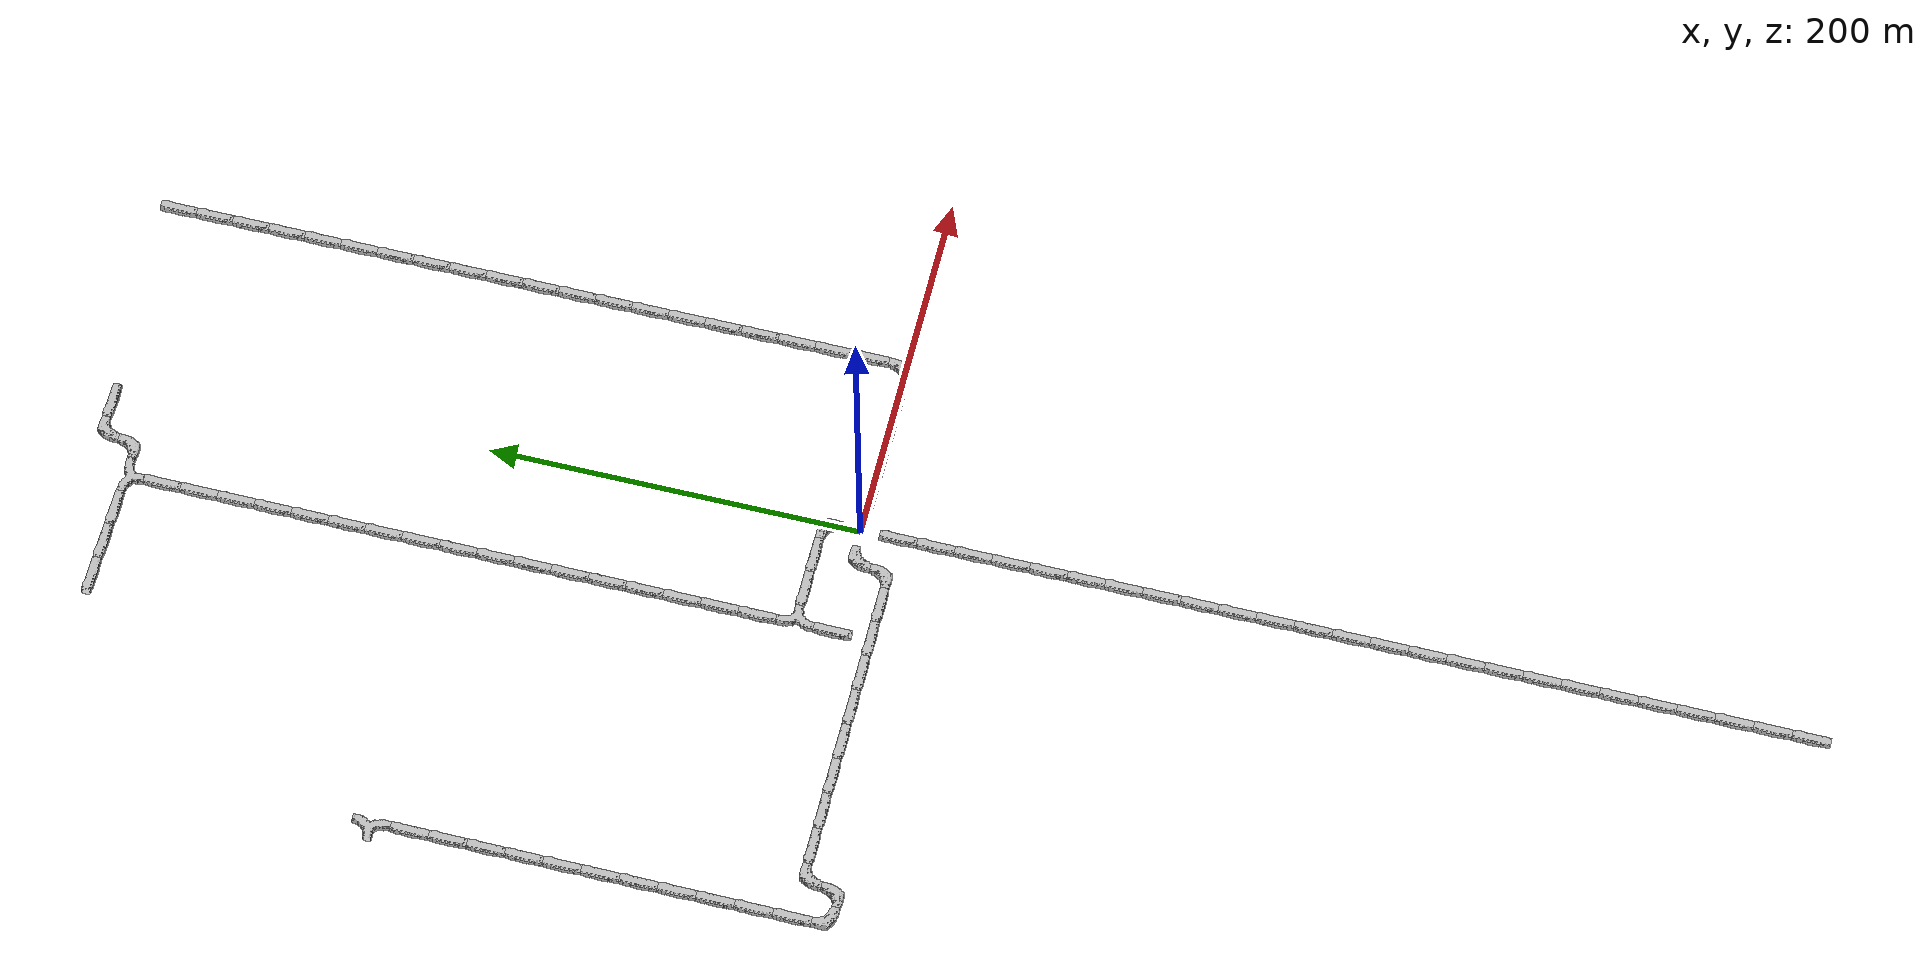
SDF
<sdf version="1.6">
 <world name="cave_2000_8">
  <include>
   <static>true</static>
   <name>cave_1_0</name>
   <pose>20 0 0 0 0 1.5707963267948966</pose>
   <uri>model://cave_straight_20m</uri>
  </include>
  <include>
   <static>true</static>
   <name>cave_2_0</name>
   <pose>40 0 0 0 0 1.5707963267948966</pose>
   <uri>model://cave_straight_20m</uri>
  </include>
  <include>
   <static>true</static>
   <name>cave_3_0</name>
   <pose>60 0 0 0 0 1.5707963267948966</pose>
   <uri>model://cave_straight_20m</uri>
  </include>
  <include>
   <static>true</static>
   <name>cave_4_0</name>
   <pose>80 0 0 0 0 1.5707963267948966</pose>
   <uri>model://cave_straight_20m</uri>
  </include>
  <include>
   <static>true</static>
   <name>cave_5_0</name>
   <pose>100 0 0 0 0 1.5707963267948966</pose>
   <uri>model://cave_L_20m</uri>
  </include>
  <include>
   <static>true</static>
   <name>cave_5_1</name>
   <pose>100 20 0 0 0 0.0</pose>
   <uri>model://cave_straight_20m</uri>
  </include>
  <include>
   <static>true</static>
   <name>cave_5_2</name>
   <pose>100 40 0 0 0 0.0</pose>
   <uri>model://cave_straight_20m</uri>
  </include>
  <include>
   <static>true</static>
   <name>cave_5_3</name>
   <pose>100 60 0 0 0 0.0</pose>
   <uri>model://cave_straight_20m</uri>
  </include>
  <include>
   <static>true</static>
   <name>cave_5_4</name>
   <pose>100 80 0 0 0 0.0</pose>
   <uri>model://cave_straight_20m</uri>
  </include>
  <include>
   <static>true</static>
   <name>cave_5_5</name>
   <pose>100 100 0 0 0 0.0</pose>
   <uri>model://cave_straight_20m</uri>
  </include>
  <include>
   <static>true</static>
   <name>cave_5_6</name>
   <pose>100 120 0 0 0 0.0</pose>
   <uri>model://cave_straight_20m</uri>
  </include>
  <include>
   <static>true</static>
   <name>cave_5_7</name>
   <pose>100 140 0 0 0 0.0</pose>
   <uri>model://cave_straight_20m</uri>
  </include>
  <include>
   <static>true</static>
   <name>cave_5_8</name>
   <pose>100 160 0 0 0 0.0</pose>
   <uri>model://cave_straight_20m</uri>
  </include>
  <include>
   <static>true</static>
   <name>cave_5_9</name>
   <pose>100 180 0 0 0 0.0</pose>
   <uri>model://cave_straight_20m</uri>
  </include>
  <include>
   <static>true</static>
   <name>cave_5_10</name>
   <pose>100 200 0 0 0 0.0</pose>
   <uri>model://cave_straight_20m</uri>
  </include>
  <include>
   <static>true</static>
   <name>cave_5_11</name>
   <pose>100 220 0 0 0 0.0</pose>
   <uri>model://cave_straight_20m</uri>
  </include>
  <include>
   <static>true</static>
   <name>cave_5_12</name>
   <pose>100 240 0 0 0 0.0</pose>
   <uri>model://cave_straight_20m</uri>
  </include>
  <include>
   <static>true</static>
   <name>cave_5_13</name>
   <pose>100 260 0 0 0 0.0</pose>
   <uri>model://cave_straight_20m</uri>
  </include>
  <include>
   <static>true</static>
   <name>cave_5_14</name>
   <pose>100 280 0 0 0 0.0</pose>
   <uri>model://cave_straight_20m</uri>
  </include>
  <include>
   <static>true</static>
   <name>cave_5_15</name>
   <pose>100 300 0 0 0 0.0</pose>
   <uri>model://cave_straight_20m</uri>
  </include>
  <include>
   <static>true</static>
   <name>cave_5_16</name>
   <pose>100 320 0 0 0 0.0</pose>
   <uri>model://cave_straight_20m</uri>
  </include>
  <include>
   <static>true</static>
   <name>cave_5_17</name>
   <pose>100 340 0 0 0 0.0</pose>
   <uri>model://cave_straight_20m</uri>
  </include>
  <include>
   <static>true</static>
   <name>cave_5_18</name>
   <pose>100 360 0 0 0 0.0</pose>
   <uri>model://cave_straight_20m</uri>
  </include>
  <include>
   <static>true</static>
   <name>cave_5_19</name>
   <pose>100 380 0 0 0 0.0</pose>
   <uri>model://cave_straight_20m</uri>
  </include>
  <include>
   <static>true</static>
   <name>cave_5_20</name>
   <pose>100 400 0 0 0 0.0</pose>
   <uri>model://cave_straight_20m</uri>
  </include>
  <include>
   <static>true</static>
   <name>cave_0_-1</name>
   <pose>0 -20 0 0 0 0.0</pose>
   <uri>model://cave_straight_20m</uri>
  </include>
  <include>
   <static>true</static>
   <name>cave_0_-2</name>
   <pose>0 -40 0 0 0 0.0</pose>
   <uri>model://cave_straight_20m</uri>
  </include>
  <include>
   <static>true</static>
   <name>cave_0_-3</name>
   <pose>0 -60 0 0 0 0.0</pose>
   <uri>model://cave_straight_20m</uri>
  </include>
  <include>
   <static>true</static>
   <name>cave_0_-4</name>
   <pose>0 -80 0 0 0 0.0</pose>
   <uri>model://cave_straight_20m</uri>
  </include>
  <include>
   <static>true</static>
   <name>cave_0_-5</name>
   <pose>0 -100 0 0 0 0.0</pose>
   <uri>model://cave_straight_20m</uri>
  </include>
  <include>
   <static>true</static>
   <name>cave_0_-6</name>
   <pose>0 -120 0 0 0 0.0</pose>
   <uri>model://cave_straight_20m</uri>
  </include>
  <include>
   <static>true</static>
   <name>cave_0_-7</name>
   <pose>0 -140 0 0 0 0.0</pose>
   <uri>model://cave_straight_20m</uri>
  </include>
  <include>
   <static>true</static>
   <name>cave_0_-8</name>
   <pose>0 -160 0 0 0 0.0</pose>
   <uri>model://cave_straight_20m</uri>
  </include>
  <include>
   <static>true</static>
   <name>cave_0_-9</name>
   <pose>0 -180 0 0 0 0.0</pose>
   <uri>model://cave_straight_20m</uri>
  </include>
  <include>
   <static>true</static>
   <name>cave_0_-10</name>
   <pose>0 -200 0 0 0 0.0</pose>
   <uri>model://cave_straight_20m</uri>
  </include>
  <include>
   <static>true</static>
   <name>cave_0_-11</name>
   <pose>0 -220 0 0 0 0.0</pose>
   <uri>model://cave_straight_20m</uri>
  </include>
  <include>
   <static>true</static>
   <name>cave_0_-12</name>
   <pose>0 -240 0 0 0 0.0</pose>
   <uri>model://cave_straight_20m</uri>
  </include>
  <include>
   <static>true</static>
   <name>cave_0_-13</name>
   <pose>0 -260 0 0 0 0.0</pose>
   <uri>model://cave_straight_20m</uri>
  </include>
  <include>
   <static>true</static>
   <name>cave_0_-14</name>
   <pose>0 -280 0 0 0 0.0</pose>
   <uri>model://cave_straight_20m</uri>
  </include>
  <include>
   <static>true</static>
   <name>cave_0_-15</name>
   <pose>0 -300 0 0 0 0.0</pose>
   <uri>model://cave_straight_20m</uri>
  </include>
  <include>
   <static>true</static>
   <name>cave_0_-16</name>
   <pose>0 -320 0 0 0 0.0</pose>
   <uri>model://cave_straight_20m</uri>
  </include>
  <include>
   <static>true</static>
   <name>cave_0_-17</name>
   <pose>0 -340 0 0 0 0.0</pose>
   <uri>model://cave_straight_20m</uri>
  </include>
  <include>
   <static>true</static>
   <name>cave_0_-18</name>
   <pose>0 -360 0 0 0 0.0</pose>
   <uri>model://cave_straight_20m</uri>
  </include>
  <include>
   <static>true</static>
   <name>cave_0_-19</name>
   <pose>0 -380 0 0 0 0.0</pose>
   <uri>model://cave_straight_20m</uri>
  </include>
  <include>
   <static>true</static>
   <name>cave_0_-20</name>
   <pose>0 -400 0 0 0 0.0</pose>
   <uri>model://cave_straight_20m</uri>
  </include>
  <include>
   <static>true</static>
   <name>cave_0_-21</name>
   <pose>0 -420 0 0 0 0.0</pose>
   <uri>model://cave_straight_20m</uri>
  </include>
  <include>
   <static>true</static>
   <name>cave_0_-22</name>
   <pose>0 -440 0 0 0 0.0</pose>
   <uri>model://cave_straight_20m</uri>
  </include>
  <include>
   <static>true</static>
   <name>cave_0_-23</name>
   <pose>0 -460 0 0 0 0.0</pose>
   <uri>model://cave_straight_20m</uri>
  </include>
  <include>
   <static>true</static>
   <name>cave_0_-24</name>
   <pose>0 -480 0 0 0 0.0</pose>
   <uri>model://cave_straight_20m</uri>
  </include>
  <include>
   <static>true</static>
   <name>cave_0_-25</name>
   <pose>0 -500 0 0 0 0.0</pose>
   <uri>model://cave_straight_20m</uri>
  </include>
  <include>
   <static>true</static>
   <name>cave_-1_0</name>
   <pose>-20 0 0 0 0 -1.5707963267948966</pose>
   <uri>model://cave_L_20m</uri>
  </include>
  <include>
   <static>true</static>
   <name>cave_-1_-1</name>
   <pose>-20 -20 0 0 0 1.5707963267948966</pose>
   <uri>model://cave_L_20m</uri>
  </include>
  <include>
   <static>true</static>
   <name>cave_-2_-1</name>
   <pose>-40 -20 0 0 0 1.5707963267948966</pose>
   <uri>model://cave_straight_20m</uri>
  </include>
  <include>
   <static>true</static>
   <name>cave_-3_-1</name>
   <pose>-60 -20 0 0 0 1.5707963267948966</pose>
   <uri>model://cave_straight_20m</uri>
  </include>
  <include>
   <static>true</static>
   <name>cave_-4_-1</name>
   <pose>-80 -20 0 0 0 1.5707963267948966</pose>
   <uri>model://cave_straight_20m</uri>
  </include>
  <include>
   <static>true</static>
   <name>cave_-5_-1</name>
   <pose>-100 -20 0 0 0 1.5707963267948966</pose>
   <uri>model://cave_straight_20m</uri>
  </include>
  <include>
   <static>true</static>
   <name>cave_-6_-1</name>
   <pose>-120 -20 0 0 0 1.5707963267948966</pose>
   <uri>model://cave_straight_20m</uri>
  </include>
  <include>
   <static>true</static>
   <name>cave_-7_-1</name>
   <pose>-140 -20 0 0 0 1.5707963267948966</pose>
   <uri>model://cave_straight_20m</uri>
  </include>
  <include>
   <static>true</static>
   <name>cave_-8_-1</name>
   <pose>-160 -20 0 0 0 1.5707963267948966</pose>
   <uri>model://cave_straight_20m</uri>
  </include>
  <include>
   <static>true</static>
   <name>cave_-9_-1</name>
   <pose>-180 -20 0 0 0 1.5707963267948966</pose>
   <uri>model://cave_straight_20m</uri>
  </include>
  <include>
   <static>true</static>
   <name>cave_-10_-1</name>
   <pose>-200 -20 0 0 0 -1.5707963267948966</pose>
   <uri>model://cave_L_20m</uri>
  </include>
  <include>
   <static>true</static>
   <name>cave_-10_-2</name>
   <pose>-200 -40 0 0 0 1.5707963267948966</pose>
   <uri>model://cave_L_20m</uri>
  </include>
  <include>
   <static>true</static>
   <name>cave_-11_-2</name>
   <pose>-220 -40 0 0 0 0.0</pose>
   <uri>model://cave_L_20m</uri>
  </include>
  <include>
   <static>true</static>
   <name>cave_-11_-1</name>
   <pose>-220 -20 0 0 0 0.0</pose>
   <uri>model://cave_straight_20m</uri>
  </include>
  <include>
   <static>true</static>
   <name>cave_-11_0</name>
   <pose>-220 0 0 0 0 0.0</pose>
   <uri>model://cave_straight_20m</uri>
  </include>
  <include>
   <static>true</static>
   <name>cave_-11_1</name>
   <pose>-220 20 0 0 0 0.0</pose>
   <uri>model://cave_straight_20m</uri>
  </include>
  <include>
   <static>true</static>
   <name>cave_-11_2</name>
   <pose>-220 40 0 0 0 0.0</pose>
   <uri>model://cave_straight_20m</uri>
  </include>
  <include>
   <static>true</static>
   <name>cave_-11_3</name>
   <pose>-220 60 0 0 0 0.0</pose>
   <uri>model://cave_straight_20m</uri>
  </include>
  <include>
   <static>true</static>
   <name>cave_-11_4</name>
   <pose>-220 80 0 0 0 0.0</pose>
   <uri>model://cave_straight_20m</uri>
  </include>
  <include>
   <static>true</static>
   <name>cave_-11_5</name>
   <pose>-220 100 0 0 0 0.0</pose>
   <uri>model://cave_straight_20m</uri>
  </include>
  <include>
   <static>true</static>
   <name>cave_-11_6</name>
   <pose>-220 120 0 0 0 0.0</pose>
   <uri>model://cave_straight_20m</uri>
  </include>
  <include>
   <static>true</static>
   <name>cave_-11_7</name>
   <pose>-220 140 0 0 0 0.0</pose>
   <uri>model://cave_straight_20m</uri>
  </include>
  <include>
   <static>true</static>
   <name>cave_-11_8</name>
   <pose>-220 160 0 0 0 0.0</pose>
   <uri>model://cave_straight_20m</uri>
  </include>
  <include>
   <static>true</static>
   <name>cave_-11_9</name>
   <pose>-220 180 0 0 0 0.0</pose>
   <uri>model://cave_straight_20m</uri>
  </include>
  <include>
   <static>true</static>
   <name>cave_-11_10</name>
   <pose>-220 200 0 0 0 1.5707963267948966</pose>
   <uri>model://cave_3way_20m</uri>
  </include>
  <include>
   <static>true</static>
   <name>cave_0_1</name>
   <pose>0 20 0 0 0 3.141592653589793</pose>
   <uri>model://cave_L_20m</uri>
  </include>
  <include>
   <static>true</static>
   <name>cave_-1_1</name>
   <pose>-20 20 0 0 0 1.5707963267948966</pose>
   <uri>model://cave_straight_20m</uri>
  </include>
  <include>
   <static>true</static>
   <name>cave_-2_1</name>
   <pose>-40 20 0 0 0 1.5707963267948966</pose>
   <uri>model://cave_straight_20m</uri>
  </include>
  <include>
   <static>true</static>
   <name>cave_-3_1</name>
   <pose>-60 20 0 0 0 -1.5707963267948966</pose>
   <uri>model://cave_3way_20m</uri>
  </include>
  <include>
   <static>true</static>
   <name>cave_-3_0</name>
   <pose>-60 0 0 0 0 0.0</pose>
   <uri>model://cave_straight_20m</uri>
  </include>
  <include>
   <static>true</static>
   <name>cave_-3_2</name>
   <pose>-60 40 0 0 0 0.0</pose>
   <uri>model://cave_straight_20m</uri>
  </include>
  <include>
   <static>true</static>
   <name>cave_-3_3</name>
   <pose>-60 60 0 0 0 0.0</pose>
   <uri>model://cave_straight_20m</uri>
  </include>
  <include>
   <static>true</static>
   <name>cave_-3_4</name>
   <pose>-60 80 0 0 0 0.0</pose>
   <uri>model://cave_straight_20m</uri>
  </include>
  <include>
   <static>true</static>
   <name>cave_-3_5</name>
   <pose>-60 100 0 0 0 0.0</pose>
   <uri>model://cave_straight_20m</uri>
  </include>
  <include>
   <static>true</static>
   <name>cave_-3_6</name>
   <pose>-60 120 0 0 0 0.0</pose>
   <uri>model://cave_straight_20m</uri>
  </include>
  <include>
   <static>true</static>
   <name>cave_-3_7</name>
   <pose>-60 140 0 0 0 0.0</pose>
   <uri>model://cave_straight_20m</uri>
  </include>
  <include>
   <static>true</static>
   <name>cave_-3_8</name>
   <pose>-60 160 0 0 0 0.0</pose>
   <uri>model://cave_straight_20m</uri>
  </include>
  <include>
   <static>true</static>
   <name>cave_-3_9</name>
   <pose>-60 180 0 0 0 0.0</pose>
   <uri>model://cave_straight_20m</uri>
  </include>
  <include>
   <static>true</static>
   <name>cave_-3_10</name>
   <pose>-60 200 0 0 0 0.0</pose>
   <uri>model://cave_straight_20m</uri>
  </include>
  <include>
   <static>true</static>
   <name>cave_-3_11</name>
   <pose>-60 220 0 0 0 0.0</pose>
   <uri>model://cave_straight_20m</uri>
  </include>
  <include>
   <static>true</static>
   <name>cave_-3_12</name>
   <pose>-60 240 0 0 0 0.0</pose>
   <uri>model://cave_straight_20m</uri>
  </include>
  <include>
   <static>true</static>
   <name>cave_-3_13</name>
   <pose>-60 260 0 0 0 0.0</pose>
   <uri>model://cave_straight_20m</uri>
  </include>
  <include>
   <static>true</static>
   <name>cave_-3_14</name>
   <pose>-60 280 0 0 0 0.0</pose>
   <uri>model://cave_straight_20m</uri>
  </include>
  <include>
   <static>true</static>
   <name>cave_-3_15</name>
   <pose>-60 300 0 0 0 0.0</pose>
   <uri>model://cave_straight_20m</uri>
  </include>
  <include>
   <static>true</static>
   <name>cave_-3_16</name>
   <pose>-60 320 0 0 0 0.0</pose>
   <uri>model://cave_straight_20m</uri>
  </include>
  <include>
   <static>true</static>
   <name>cave_-3_17</name>
   <pose>-60 340 0 0 0 0.0</pose>
   <uri>model://cave_straight_20m</uri>
  </include>
  <include>
   <static>true</static>
   <name>cave_-3_18</name>
   <pose>-60 360 0 0 0 0.0</pose>
   <uri>model://cave_straight_20m</uri>
  </include>
  <include>
   <static>true</static>
   <name>cave_-3_19</name>
   <pose>-60 380 0 0 0 3.141592653589793</pose>
   <uri>model://cave_3way_20m</uri>
  </include>
  <include>
   <static>true</static>
   <name>cave_-2_19</name>
   <pose>-40 380 0 0 0 1.5707963267948966</pose>
   <uri>model://cave_L_20m</uri>
  </include>
  <include>
   <static>true</static>
   <name>cave_-2_20</name>
   <pose>-40 400 0 0 0 -1.5707963267948966</pose>
   <uri>model://cave_L_20m</uri>
  </include>
  <include>
   <static>true</static>
   <name>cave_-1_20</name>
   <pose>-20 400 0 0 0 1.5707963267948966</pose>
   <uri>model://cave_straight_20m</uri>
  </include>
  <include>
   <static>true</static>
   <name>cave_-4_19</name>
   <pose>-80 380 0 0 0 1.5707963267948966</pose>
   <uri>model://cave_straight_20m</uri>
  </include>
  <include>
   <static>true</static>
   <name>cave_-5_19</name>
   <pose>-100 380 0 0 0 1.5707963267948966</pose>
   <uri>model://cave_straight_20m</uri>
  </include>
  <include>
   <static>true</static>
   <name>cave_-6_19</name>
   <pose>-120 380 0 0 0 1.5707963267948966</pose>
   <uri>model://cave_straight_20m</uri>
  </include>
 </world>
</sdf>

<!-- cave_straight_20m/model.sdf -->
<sdf version="1.6">
  <model name="cave_straight_20m">
    <static>true</static>
    <link name="base">
      <pose>0 0 0 0 0 0</pose>
      <collision name="base_collision">
        <pose>0 0 0 0 0 0</pose>
        <geometry>
          <mesh>
            <uri>model://cave_straight_20m/meshes/cave_straight_20m.dae</uri>
          </mesh>
        </geometry>
        <surface>
          <contact>
             <collide_bitmask>0xffff</collide_bitmask>
          </contact>
          <friction>
            <ode>
              <mu>100</mu>
              <mu2>50</mu2>
            </ode>
          </friction>
        </surface>
      </collision>
      <visual name="base_visual">
        <pose>0 0 0 0 0 0</pose>
        <cast_shadows>false</cast_shadows>
        <geometry>
          <mesh>
            <uri>model://cave_straight_20m/meshes/cave_straight_20m.dae</uri>
          </mesh>
        </geometry>
      </visual>
    </link>
  </model>
</sdf>

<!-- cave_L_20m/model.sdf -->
<sdf version="1.6">
  <model name="cave_L_20m">
    <static>true</static>
    <link name="base">
      <pose>0 0 0 0 0 0</pose>
      <collision name="base_collision">
        <pose>0 0 0 0 0 0</pose>
        <geometry>
          <mesh>
            <uri>model://cave_L_20m/meshes/cave_L_20m.dae</uri>
          </mesh>
        </geometry>
        <surface>
          <contact>
             <collide_bitmask>0xffff</collide_bitmask>
          </contact>
          <friction>
            <ode>
              <mu>100</mu>
              <mu2>50</mu2>
            </ode>
          </friction>
        </surface>
      </collision>
      <visual name="base_visual">
        <pose>0 0 0 0 0 0</pose>
        <cast_shadows>false</cast_shadows>
        <geometry>
          <mesh>
            <uri>model://cave_L_20m/meshes/cave_L_20m.dae</uri>
          </mesh>
        </geometry>
      </visual>
    </link>
  </model>
</sdf>

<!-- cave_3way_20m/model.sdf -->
<sdf version="1.6">
  <model name="cave_3way_20m">
    <static>true</static>
    <link name="base">
      <pose>0 0 0 0 0 0</pose>
      <collision name="base_collision">
        <pose>0 0 0 0 0 0</pose>
        <geometry>
          <mesh>
            <uri>model://cave_3way_20m/meshes/cave_3way_20m.dae</uri>
          </mesh>
        </geometry>
        <surface>
          <contact>
             <collide_bitmask>0xffff</collide_bitmask>
          </contact>
          <friction>
            <ode>
              <mu>100</mu>
              <mu2>50</mu2>
            </ode>
          </friction>
        </surface>
      </collision>
      <visual name="base_visual">
        <cast_shadows>false</cast_shadows>
        <pose>0 0 0 0 0 0</pose>
        <geometry>
          <mesh>
            <uri>model://cave_3way_20m/meshes/cave_3way_20m.dae</uri>
          </mesh>
        </geometry>
      </visual>
    </link>
  </model>
</sdf>
